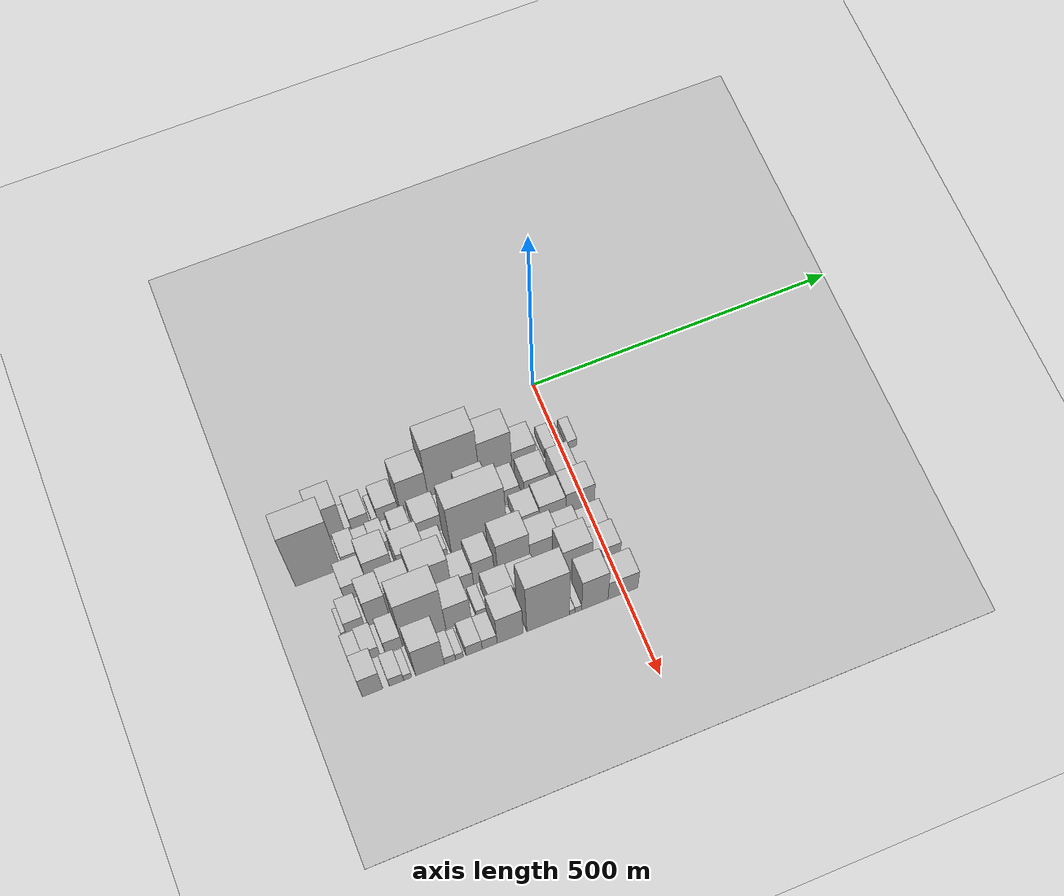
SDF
<sdf version="1.6">
 <world name="default">
  <include><name>ground_plane_1</name><uri>model://HANNAS_ground_plane</uri></include>
  <include>
   <name>ground_plane_2</name>
   <uri>model://HANNAS_ground_plane</uri>
   <pose>100 0 0  0 0 0</pose>
  </include>
  <model name="building_13">
   <static>1</static>
   <pose>100.0000 -375.0913 0 0.000000 0.000000 0.000000</pose>
   <link name="link">
    <pose>0 0 69.00 0 0 0</pose>
    <collision name="collision"><geometry><box><size>40.0000 41.8153 138.0000</size></box></geometry></collision>
    <visual name="visual">
     <cast_shadows>0</cast_shadows>
     <geometry><box><size>40.0000 41.8153 138.0000</size></box></geometry>
     <material>
      <script>
       <uri>model://HANNAS_wall/materials/scripts</uri>
       <uri>model://HANNAS_wall/materials/textures</uri>
       <name>vrc/HANNAS_wall</name>
      </script>
     </material>
    </visual>
   </link>
  </model>
  <model name="building_14">
   <static>1</static>
   <pose>100.0000 -348.9207 0 0.000000 0.000000 0.000000</pose>
   <link name="link">
    <pose>0 0 12.00 0 0 0</pose>
    <collision name="collision"><geometry><box><size>40.0000 10.5259 24.0000</size></box></geometry></collision>
    <visual name="visual">
     <cast_shadows>0</cast_shadows>
     <geometry><box><size>40.0000 10.5259 24.0000</size></box></geometry>
     <material>
      <script>
       <uri>model://HANNAS_wall/materials/scripts</uri>
       <uri>model://HANNAS_wall/materials/textures</uri>
       <name>vrc/HANNAS_wall</name>
      </script>
     </material>
    </visual>
   </link>
  </model>
  <model name="building_15">
   <static>1</static>
   <pose>100.0000 -329.2720 0 0.000000 0.000000 0.000000</pose>
   <link name="link">
    <pose>0 0 28.50 0 0 0</pose>
    <collision name="collision"><geometry><box><size>40.0000 28.7715 57.0000</size></box></geometry></collision>
    <visual name="visual">
     <cast_shadows>0</cast_shadows>
     <geometry><box><size>40.0000 28.7715 57.0000</size></box></geometry>
     <material>
      <script>
       <uri>model://HANNAS_wall/materials/scripts</uri>
       <uri>model://HANNAS_wall/materials/textures</uri>
       <name>vrc/HANNAS_wall</name>
      </script>
     </material>
    </visual>
   </link>
  </model>
  <model name="building_16">
   <static>1</static>
   <pose>100.0000 -306.3816 0 0.000000 0.000000 0.000000</pose>
   <link name="link">
    <pose>0 0 10.50 0 0 0</pose>
    <collision name="collision"><geometry><box><size>40.0000 9.0092 21.0000</size></box></geometry></collision>
    <visual name="visual">
     <cast_shadows>0</cast_shadows>
     <geometry><box><size>40.0000 9.0092 21.0000</size></box></geometry>
     <material>
      <script>
       <uri>model://HANNAS_wall/materials/scripts</uri>
       <uri>model://HANNAS_wall/materials/textures</uri>
       <name>vrc/HANNAS_wall</name>
      </script>
     </material>
    </visual>
   </link>
  </model>
  <model name="building_17">
   <static>1</static>
   <pose>100.0000 -285.0486 0 0.000000 0.000000 0.000000</pose>
   <link name="link">
    <pose>0 0 28.50 0 0 0</pose>
    <collision name="collision"><geometry><box><size>40.0000 33.6569 57.0000</size></box></geometry></collision>
    <visual name="visual">
     <cast_shadows>0</cast_shadows>
     <geometry><box><size>40.0000 33.6569 57.0000</size></box></geometry>
     <material>
      <script>
       <uri>model://HANNAS_wall/materials/scripts</uri>
       <uri>model://HANNAS_wall/materials/textures</uri>
       <name>vrc/HANNAS_wall</name>
      </script>
     </material>
    </visual>
   </link>
  </model>
  <model name="building_18">
   <static>1</static>
   <pose>100.0000 -241.9831 0 0.000000 0.000000 0.000000</pose>
   <link name="link">
    <pose>0 0 66.00 0 0 0</pose>
    <collision name="collision"><geometry><box><size>40.0000 46.4741 132.0000</size></box></geometry></collision>
    <visual name="visual">
     <cast_shadows>0</cast_shadows>
     <geometry><box><size>40.0000 46.4741 132.0000</size></box></geometry>
     <material>
      <script>
       <uri>model://HANNAS_wall/materials/scripts</uri>
       <uri>model://HANNAS_wall/materials/textures</uri>
       <name>vrc/HANNAS_wall</name>
      </script>
     </material>
    </visual>
   </link>
  </model>
  <model name="building_19">
   <static>1</static>
   <pose>100.0000 -177.3380 0 0.000000 0.000000 0.000000</pose>
   <link name="link">
    <pose>0 0 109.50 0 0 0</pose>
    <collision name="collision"><geometry><box><size>40.0000 82.8162 219.0000</size></box></geometry></collision>
    <visual name="visual">
     <cast_shadows>0</cast_shadows>
     <geometry><box><size>40.0000 82.8162 219.0000</size></box></geometry>
     <material>
      <script>
       <uri>model://HANNAS_wall/materials/scripts</uri>
       <uri>model://HANNAS_wall/materials/textures</uri>
       <name>vrc/HANNAS_wall</name>
      </script>
     </material>
    </visual>
   </link>
  </model>
  <model name="building_20">
   <static>1</static>
   <pose>100.0000 -109.4534 0 0.000000 0.000000 0.000000</pose>
   <link name="link">
    <pose>0 0 81.00 0 0 0</pose>
    <collision name="collision"><geometry><box><size>40.0000 52.9530 162.0000</size></box></geometry></collision>
    <visual name="visual">
     <cast_shadows>0</cast_shadows>
     <geometry><box><size>40.0000 52.9530 162.0000</size></box></geometry>
     <material>
      <script>
       <uri>model://HANNAS_wall/materials/scripts</uri>
       <uri>model://HANNAS_wall/materials/textures</uri>
       <name>vrc/HANNAS_wall</name>
      </script>
     </material>
    </visual>
   </link>
  </model>
  <model name="building_21">
   <static>1</static>
   <pose>100.0000 -63.3266 0 0.000000 0.000000 0.000000</pose>
   <link name="link">
    <pose>0 0 37.50 0 0 0</pose>
    <collision name="collision"><geometry><box><size>40.0000 39.3005 75.0000</size></box></geometry></collision>
    <visual name="visual">
     <cast_shadows>0</cast_shadows>
     <geometry><box><size>40.0000 39.3005 75.0000</size></box></geometry>
     <material>
      <script>
       <uri>model://HANNAS_wall/materials/scripts</uri>
       <uri>model://HANNAS_wall/materials/textures</uri>
       <name>vrc/HANNAS_wall</name>
      </script>
     </material>
    </visual>
   </link>
  </model>
  <model name="building_22">
   <static>1</static>
   <pose>100.0000 -39.4577 0 0.000000 0.000000 0.000000</pose>
   <link name="link">
    <pose>0 0 9.00 0 0 0</pose>
    <collision name="collision"><geometry><box><size>40.0000 8.4373 18.0000</size></box></geometry></collision>
    <visual name="visual">
     <cast_shadows>0</cast_shadows>
     <geometry><box><size>40.0000 8.4373 18.0000</size></box></geometry>
     <material>
      <script>
       <uri>model://HANNAS_wall/materials/scripts</uri>
       <uri>model://HANNAS_wall/materials/textures</uri>
       <name>vrc/HANNAS_wall</name>
      </script>
     </material>
    </visual>
   </link>
  </model>
  <model name="building_23">
   <static>1</static>
   <pose>100.0000 -19.8759 0 0.000000 0.000000 0.000000</pose>
   <link name="link">
    <pose>0 0 18.00 0 0 0</pose>
    <collision name="collision"><geometry><box><size>40.0000 18.7263 36.0000</size></box></geometry></collision>
    <visual name="visual">
     <cast_shadows>0</cast_shadows>
     <geometry><box><size>40.0000 18.7263 36.0000</size></box></geometry>
     <material>
      <script>
       <uri>model://HANNAS_wall/materials/scripts</uri>
       <uri>model://HANNAS_wall/materials/textures</uri>
       <name>vrc/HANNAS_wall</name>
      </script>
     </material>
    </visual>
   </link>
  </model>
  <model name="building_24">
   <static>1</static>
   <pose>100.0000 -4.0476 0 0.000000 0.000000 0.000000</pose>
   <link name="link">
    <pose>0 0 13.50 0 0 0</pose>
    <collision name="collision"><geometry><box><size>40.0000 12.9304 27.0000</size></box></geometry></collision>
    <visual name="visual">
     <cast_shadows>0</cast_shadows>
     <geometry><box><size>40.0000 12.9304 27.0000</size></box></geometry>
     <material>
      <script>
       <uri>model://HANNAS_wall/materials/scripts</uri>
       <uri>model://HANNAS_wall/materials/textures</uri>
       <name>vrc/HANNAS_wall</name>
      </script>
     </material>
    </visual>
   </link>
  </model>
  <model name="building_25">
   <static>1</static>
   <pose>100.0000 16.3489 0 0.000000 0.000000 0.000000</pose>
   <link name="link">
    <pose>0 0 15.00 0 0 0</pose>
    <collision name="collision"><geometry><box><size>40.0000 15.8626 30.0000</size></box></geometry></collision>
    <visual name="visual">
     <cast_shadows>0</cast_shadows>
     <geometry><box><size>40.0000 15.8626 30.0000</size></box></geometry>
     <material>
      <script>
       <uri>model://HANNAS_wall/materials/scripts</uri>
       <uri>model://HANNAS_wall/materials/textures</uri>
       <name>vrc/HANNAS_wall</name>
      </script>
     </material>
    </visual>
   </link>
  </model>
  <model name="building_63">
   <static>1</static>
   <pose>149.0000 -415.2956 0 0.000000 0.000000 0.000000</pose>
   <link name="link">
    <pose>0 0 111.00 0 0 0</pose>
    <collision name="collision"><geometry><box><size>40.0000 72.4643 222.0000</size></box></geometry></collision>
    <visual name="visual">
     <cast_shadows>0</cast_shadows>
     <geometry><box><size>40.0000 72.4643 222.0000</size></box></geometry>
     <material>
      <script>
       <uri>model://HANNAS_wall/materials/scripts</uri>
       <uri>model://HANNAS_wall/materials/textures</uri>
       <name>vrc/HANNAS_wall</name>
      </script>
     </material>
    </visual>
   </link>
  </model>
  <model name="building_64">
   <static>1</static>
   <pose>149.0000 -361.4305 0 0.000000 0.000000 0.000000</pose>
   <link name="link">
    <pose>0 0 25.50 0 0 0</pose>
    <collision name="collision"><geometry><box><size>40.0000 27.2659 51.0000</size></box></geometry></collision>
    <visual name="visual">
     <cast_shadows>0</cast_shadows>
     <geometry><box><size>40.0000 27.2659 51.0000</size></box></geometry>
     <material>
      <script>
       <uri>model://HANNAS_wall/materials/scripts</uri>
       <uri>model://HANNAS_wall/materials/textures</uri>
       <name>vrc/HANNAS_wall</name>
      </script>
     </material>
    </visual>
   </link>
  </model>
  <model name="building_65">
   <static>1</static>
   <pose>149.0000 -336.2556 0 0.000000 0.000000 0.000000</pose>
   <link name="link">
    <pose>0 0 19.50 0 0 0</pose>
    <collision name="collision"><geometry><box><size>40.0000 23.0838 39.0000</size></box></geometry></collision>
    <visual name="visual">
     <cast_shadows>0</cast_shadows>
     <geometry><box><size>40.0000 23.0838 39.0000</size></box></geometry>
     <material>
      <script>
       <uri>model://HANNAS_wall/materials/scripts</uri>
       <uri>model://HANNAS_wall/materials/textures</uri>
       <name>vrc/HANNAS_wall</name>
      </script>
     </material>
    </visual>
   </link>
  </model>
  <model name="building_66">
   <static>1</static>
   <pose>149.0000 -312.7713 0 0.000000 0.000000 0.000000</pose>
   <link name="link">
    <pose>0 0 22.50 0 0 0</pose>
    <collision name="collision"><geometry><box><size>40.0000 23.8847 45.0000</size></box></geometry></collision>
    <visual name="visual">
     <cast_shadows>0</cast_shadows>
     <geometry><box><size>40.0000 23.8847 45.0000</size></box></geometry>
     <material>
      <script>
       <uri>model://HANNAS_wall/materials/scripts</uri>
       <uri>model://HANNAS_wall/materials/textures</uri>
       <name>vrc/HANNAS_wall</name>
      </script>
     </material>
    </visual>
   </link>
  </model>
  <model name="building_67">
   <static>1</static>
   <pose>149.0000 -275.8887 0 0.000000 0.000000 0.000000</pose>
   <link name="link">
    <pose>0 0 28.50 0 0 0</pose>
    <collision name="collision"><geometry><box><size>40.0000 29.8805 57.0000</size></box></geometry></collision>
    <visual name="visual">
     <cast_shadows>0</cast_shadows>
     <geometry><box><size>40.0000 29.8805 57.0000</size></box></geometry>
     <material>
      <script>
       <uri>model://HANNAS_wall/materials/scripts</uri>
       <uri>model://HANNAS_wall/materials/textures</uri>
       <name>vrc/HANNAS_wall</name>
      </script>
     </material>
    </visual>
   </link>
  </model>
  <model name="building_68">
   <static>1</static>
   <pose>149.0000 -236.1031 0 0.000000 0.000000 0.000000</pose>
   <link name="link">
    <pose>0 0 36.00 0 0 0</pose>
    <collision name="collision"><geometry><box><size>40.0000 39.6908 72.0000</size></box></geometry></collision>
    <visual name="visual">
     <cast_shadows>0</cast_shadows>
     <geometry><box><size>40.0000 39.6908 72.0000</size></box></geometry>
     <material>
      <script>
       <uri>model://HANNAS_wall/materials/scripts</uri>
       <uri>model://HANNAS_wall/materials/textures</uri>
       <name>vrc/HANNAS_wall</name>
      </script>
     </material>
    </visual>
   </link>
  </model>
  <model name="building_69">
   <static>1</static>
   <pose>149.0000 -201.3836 0 0.000000 0.000000 0.000000</pose>
   <link name="link">
    <pose>0 0 25.50 0 0 0</pose>
    <collision name="collision"><geometry><box><size>40.0000 29.7481 51.0000</size></box></geometry></collision>
    <visual name="visual">
     <cast_shadows>0</cast_shadows>
     <geometry><box><size>40.0000 29.7481 51.0000</size></box></geometry>
     <material>
      <script>
       <uri>model://HANNAS_wall/materials/scripts</uri>
       <uri>model://HANNAS_wall/materials/textures</uri>
       <name>vrc/HANNAS_wall</name>
      </script>
     </material>
    </visual>
   </link>
  </model>
  <model name="building_70">
   <static>1</static>
   <pose>149.0000 -157.8084 0 0.000000 0.000000 0.000000</pose>
   <link name="link">
    <pose>0 0 58.50 0 0 0</pose>
    <collision name="collision"><geometry><box><size>40.0000 45.4023 117.0000</size></box></geometry></collision>
    <visual name="visual">
     <cast_shadows>0</cast_shadows>
     <geometry><box><size>40.0000 45.4023 117.0000</size></box></geometry>
     <material>
      <script>
       <uri>model://HANNAS_wall/materials/scripts</uri>
       <uri>model://HANNAS_wall/materials/textures</uri>
       <name>vrc/HANNAS_wall</name>
      </script>
     </material>
    </visual>
   </link>
  </model>
  <model name="building_71">
   <static>1</static>
   <pose>149.0000 -107.3944 0 0.000000 0.000000 0.000000</pose>
   <link name="link">
    <pose>0 0 33.00 0 0 0</pose>
    <collision name="collision"><geometry><box><size>40.0000 35.4257 66.0000</size></box></geometry></collision>
    <visual name="visual">
     <cast_shadows>0</cast_shadows>
     <geometry><box><size>40.0000 35.4257 66.0000</size></box></geometry>
     <material>
      <script>
       <uri>model://HANNAS_wall/materials/scripts</uri>
       <uri>model://HANNAS_wall/materials/textures</uri>
       <name>vrc/HANNAS_wall</name>
      </script>
     </material>
    </visual>
   </link>
  </model>
  <model name="building_72">
   <static>1</static>
   <pose>149.0000 -62.2759 0 0.000000 0.000000 0.000000</pose>
   <link name="link">
    <pose>0 0 36.00 0 0 0</pose>
    <collision name="collision"><geometry><box><size>40.0000 40.8113 72.0000</size></box></geometry></collision>
    <visual name="visual">
     <cast_shadows>0</cast_shadows>
     <geometry><box><size>40.0000 40.8113 72.0000</size></box></geometry>
     <material>
      <script>
       <uri>model://HANNAS_wall/materials/scripts</uri>
       <uri>model://HANNAS_wall/materials/textures</uri>
       <name>vrc/HANNAS_wall</name>
      </script>
     </material>
    </visual>
   </link>
  </model>
  <model name="building_73">
   <static>1</static>
   <pose>149.0000 -38.1605 0 0.000000 0.000000 0.000000</pose>
   <link name="link">
    <pose>0 0 7.50 0 0 0</pose>
    <collision name="collision"><geometry><box><size>40.0000 7.4195 15.0000</size></box></geometry></collision>
    <visual name="visual">
     <cast_shadows>0</cast_shadows>
     <geometry><box><size>40.0000 7.4195 15.0000</size></box></geometry>
     <material>
      <script>
       <uri>model://HANNAS_wall/materials/scripts</uri>
       <uri>model://HANNAS_wall/materials/textures</uri>
       <name>vrc/HANNAS_wall</name>
      </script>
     </material>
    </visual>
   </link>
  </model>
  <model name="building_74">
   <static>1</static>
   <pose>149.0000 -14.0762 0 0.000000 0.000000 0.000000</pose>
   <link name="link">
    <pose>0 0 31.50 0 0 0</pose>
    <collision name="collision"><geometry><box><size>40.0000 34.7492 63.0000</size></box></geometry></collision>
    <visual name="visual">
     <cast_shadows>0</cast_shadows>
     <geometry><box><size>40.0000 34.7492 63.0000</size></box></geometry>
     <material>
      <script>
       <uri>model://HANNAS_wall/materials/scripts</uri>
       <uri>model://HANNAS_wall/materials/textures</uri>
       <name>vrc/HANNAS_wall</name>
      </script>
     </material>
    </visual>
   </link>
  </model>
  <model name="building_112">
   <static>1</static>
   <pose>198.0000 -371.4315 0 0.000000 0.000000 0.000000</pose>
   <link name="link">
    <pose>0 0 33.00 0 0 0</pose>
    <collision name="collision"><geometry><box><size>40.0000 38.9641 66.0000</size></box></geometry></collision>
    <visual name="visual">
     <cast_shadows>0</cast_shadows>
     <geometry><box><size>40.0000 38.9641 66.0000</size></box></geometry>
     <material>
      <script>
       <uri>model://HANNAS_wall/materials/scripts</uri>
       <uri>model://HANNAS_wall/materials/textures</uri>
       <name>vrc/HANNAS_wall</name>
      </script>
     </material>
    </visual>
   </link>
  </model>
  <model name="building_113">
   <static>1</static>
   <pose>198.0000 -330.7115 0 0.000000 0.000000 0.000000</pose>
   <link name="link">
    <pose>0 0 67.50 0 0 0</pose>
    <collision name="collision"><geometry><box><size>40.0000 42.4760 135.0000</size></box></geometry></collision>
    <visual name="visual">
     <cast_shadows>0</cast_shadows>
     <geometry><box><size>40.0000 42.4760 135.0000</size></box></geometry>
     <material>
      <script>
       <uri>model://HANNAS_wall/materials/scripts</uri>
       <uri>model://HANNAS_wall/materials/textures</uri>
       <name>vrc/HANNAS_wall</name>
      </script>
     </material>
    </visual>
   </link>
  </model>
  <model name="building_114">
   <static>1</static>
   <pose>198.0000 -279.3711 0 0.000000 0.000000 0.000000</pose>
   <link name="link">
    <pose>0 0 57.00 0 0 0</pose>
    <collision name="collision"><geometry><box><size>40.0000 44.2047 114.0000</size></box></geometry></collision>
    <visual name="visual">
     <cast_shadows>0</cast_shadows>
     <geometry><box><size>40.0000 44.2047 114.0000</size></box></geometry>
     <material>
      <script>
       <uri>model://HANNAS_wall/materials/scripts</uri>
       <uri>model://HANNAS_wall/materials/textures</uri>
       <name>vrc/HANNAS_wall</name>
      </script>
     </material>
    </visual>
   </link>
  </model>
  <model name="building_115">
   <static>1</static>
   <pose>198.0000 -241.0895 0 0.000000 0.000000 0.000000</pose>
   <link name="link">
    <pose>0 0 30.00 0 0 0</pose>
    <collision name="collision"><geometry><box><size>40.0000 32.3585 60.0000</size></box></geometry></collision>
    <visual name="visual">
     <cast_shadows>0</cast_shadows>
     <geometry><box><size>40.0000 32.3585 60.0000</size></box></geometry>
     <material>
      <script>
       <uri>model://HANNAS_wall/materials/scripts</uri>
       <uri>model://HANNAS_wall/materials/textures</uri>
       <name>vrc/HANNAS_wall</name>
      </script>
     </material>
    </visual>
   </link>
  </model>
  <model name="building_116">
   <static>1</static>
   <pose>198.0000 -221.8473 0 0.000000 0.000000 0.000000</pose>
   <link name="link">
    <pose>0 0 7.50 0 0 0</pose>
    <collision name="collision"><geometry><box><size>40.0000 6.1260 15.0000</size></box></geometry></collision>
    <visual name="visual">
     <cast_shadows>0</cast_shadows>
     <geometry><box><size>40.0000 6.1260 15.0000</size></box></geometry>
     <material>
      <script>
       <uri>model://HANNAS_wall/materials/scripts</uri>
       <uri>model://HANNAS_wall/materials/textures</uri>
       <name>vrc/HANNAS_wall</name>
      </script>
     </material>
    </visual>
   </link>
  </model>
  <model name="building_117">
   <static>1</static>
   <pose>198.0000 -174.2746 0 0.000000 0.000000 0.000000</pose>
   <link name="link">
    <pose>0 0 112.50 0 0 0</pose>
    <collision name="collision"><geometry><box><size>40.0000 89.0194 225.0000</size></box></geometry></collision>
    <visual name="visual">
     <cast_shadows>0</cast_shadows>
     <geometry><box><size>40.0000 89.0194 225.0000</size></box></geometry>
     <material>
      <script>
       <uri>model://HANNAS_wall/materials/scripts</uri>
       <uri>model://HANNAS_wall/materials/textures</uri>
       <name>vrc/HANNAS_wall</name>
      </script>
     </material>
    </visual>
   </link>
  </model>
  <model name="building_118">
   <static>1</static>
   <pose>198.0000 -116.8831 0 0.000000 0.000000 0.000000</pose>
   <link name="link">
    <pose>0 0 10.50 0 0 0</pose>
    <collision name="collision"><geometry><box><size>40.0000 9.7635 21.0000</size></box></geometry></collision>
    <visual name="visual">
     <cast_shadows>0</cast_shadows>
     <geometry><box><size>40.0000 9.7635 21.0000</size></box></geometry>
     <material>
      <script>
       <uri>model://HANNAS_wall/materials/scripts</uri>
       <uri>model://HANNAS_wall/materials/textures</uri>
       <name>vrc/HANNAS_wall</name>
      </script>
     </material>
    </visual>
   </link>
  </model>
  <model name="building_119">
   <static>1</static>
   <pose>198.0000 -94.6599 0 0.000000 0.000000 0.000000</pose>
   <link name="link">
    <pose>0 0 34.50 0 0 0</pose>
    <collision name="collision"><geometry><box><size>40.0000 34.6830 69.0000</size></box></geometry></collision>
    <visual name="visual">
     <cast_shadows>0</cast_shadows>
     <geometry><box><size>40.0000 34.6830 69.0000</size></box></geometry>
     <material>
      <script>
       <uri>model://HANNAS_wall/materials/scripts</uri>
       <uri>model://HANNAS_wall/materials/textures</uri>
       <name>vrc/HANNAS_wall</name>
      </script>
     </material>
    </visual>
   </link>
  </model>
  <model name="building_120">
   <static>1</static>
   <pose>198.0000 -56.0234 0 0.000000 0.000000 0.000000</pose>
   <link name="link">
    <pose>0 0 40.50 0 0 0</pose>
    <collision name="collision"><geometry><box><size>40.0000 42.5899 81.0000</size></box></geometry></collision>
    <visual name="visual">
     <cast_shadows>0</cast_shadows>
     <geometry><box><size>40.0000 42.5899 81.0000</size></box></geometry>
     <material>
      <script>
       <uri>model://HANNAS_wall/materials/scripts</uri>
       <uri>model://HANNAS_wall/materials/textures</uri>
       <name>vrc/HANNAS_wall</name>
      </script>
     </material>
    </visual>
   </link>
  </model>
  <model name="building_121">
   <static>1</static>
   <pose>198.0000 -11.2413 0 0.000000 0.000000 0.000000</pose>
   <link name="link">
    <pose>0 0 45.00 0 0 0</pose>
    <collision name="collision"><geometry><box><size>40.0000 46.9743 90.0000</size></box></geometry></collision>
    <visual name="visual">
     <cast_shadows>0</cast_shadows>
     <geometry><box><size>40.0000 46.9743 90.0000</size></box></geometry>
     <material>
      <script>
       <uri>model://HANNAS_wall/materials/scripts</uri>
       <uri>model://HANNAS_wall/materials/textures</uri>
       <name>vrc/HANNAS_wall</name>
      </script>
     </material>
    </visual>
   </link>
  </model>
  <model name="building_157">
   <static>1</static>
   <pose>247.0000 -410.4297 0 0.000000 0.000000 0.000000</pose>
   <link name="link">
    <pose>0 0 7.50 0 0 0</pose>
    <collision name="collision"><geometry><box><size>40.0000 7.4075 15.0000</size></box></geometry></collision>
    <visual name="visual">
     <cast_shadows>0</cast_shadows>
     <geometry><box><size>40.0000 7.4075 15.0000</size></box></geometry>
     <material>
      <script>
       <uri>model://HANNAS_wall/materials/scripts</uri>
       <uri>model://HANNAS_wall/materials/textures</uri>
       <name>vrc/HANNAS_wall</name>
      </script>
     </material>
    </visual>
   </link>
  </model>
  <model name="building_158">
   <static>1</static>
   <pose>247.0000 -391.8639 0 0.000000 0.000000 0.000000</pose>
   <link name="link">
    <pose>0 0 27.00 0 0 0</pose>
    <collision name="collision"><geometry><box><size>40.0000 29.7241 54.0000</size></box></geometry></collision>
    <visual name="visual">
     <cast_shadows>0</cast_shadows>
     <geometry><box><size>40.0000 29.7241 54.0000</size></box></geometry>
     <material>
      <script>
       <uri>model://HANNAS_wall/materials/scripts</uri>
       <uri>model://HANNAS_wall/materials/textures</uri>
       <name>vrc/HANNAS_wall</name>
      </script>
     </material>
    </visual>
   </link>
  </model>
  <model name="building_159">
   <static>1</static>
   <pose>247.0000 -354.8948 0 0.000000 0.000000 0.000000</pose>
   <link name="link">
    <pose>0 0 57.00 0 0 0</pose>
    <collision name="collision"><geometry><box><size>40.0000 34.2141 114.0000</size></box></geometry></collision>
    <visual name="visual">
     <cast_shadows>0</cast_shadows>
     <geometry><box><size>40.0000 34.2141 114.0000</size></box></geometry>
     <material>
      <script>
       <uri>model://HANNAS_wall/materials/scripts</uri>
       <uri>model://HANNAS_wall/materials/textures</uri>
       <name>vrc/HANNAS_wall</name>
      </script>
     </material>
    </visual>
   </link>
  </model>
  <model name="building_160">
   <static>1</static>
   <pose>247.0000 -315.6419 0 0.000000 0.000000 0.000000</pose>
   <link name="link">
    <pose>0 0 61.50 0 0 0</pose>
    <collision name="collision"><geometry><box><size>40.0000 44.2917 123.0000</size></box></geometry></collision>
    <visual name="visual">
     <cast_shadows>0</cast_shadows>
     <geometry><box><size>40.0000 44.2917 123.0000</size></box></geometry>
     <material>
      <script>
       <uri>model://HANNAS_wall/materials/scripts</uri>
       <uri>model://HANNAS_wall/materials/textures</uri>
       <name>vrc/HANNAS_wall</name>
      </script>
     </material>
    </visual>
   </link>
  </model>
  <model name="building_161">
   <static>1</static>
   <pose>247.0000 -265.5947 0 0.000000 0.000000 0.000000</pose>
   <link name="link">
    <pose>0 0 82.50 0 0 0</pose>
    <collision name="collision"><geometry><box><size>40.0000 55.8027 165.0000</size></box></geometry></collision>
    <visual name="visual">
     <cast_shadows>0</cast_shadows>
     <geometry><box><size>40.0000 55.8027 165.0000</size></box></geometry>
     <material>
      <script>
       <uri>model://HANNAS_wall/materials/scripts</uri>
       <uri>model://HANNAS_wall/materials/textures</uri>
       <name>vrc/HANNAS_wall</name>
      </script>
     </material>
    </visual>
   </link>
  </model>
  <model name="building_162">
   <static>1</static>
   <pose>247.0000 -220.7779 0 0.000000 0.000000 0.000000</pose>
   <link name="link">
    <pose>0 0 30.00 0 0 0</pose>
    <collision name="collision"><geometry><box><size>40.0000 33.8310 60.0000</size></box></geometry></collision>
    <visual name="visual">
     <cast_shadows>0</cast_shadows>
     <geometry><box><size>40.0000 33.8310 60.0000</size></box></geometry>
     <material>
      <script>
       <uri>model://HANNAS_wall/materials/scripts</uri>
       <uri>model://HANNAS_wall/materials/textures</uri>
       <name>vrc/HANNAS_wall</name>
      </script>
     </material>
    </visual>
   </link>
  </model>
  <model name="building_163">
   <static>1</static>
   <pose>247.0000 -186.8509 0 0.000000 0.000000 0.000000</pose>
   <link name="link">
    <pose>0 0 51.00 0 0 0</pose>
    <collision name="collision"><geometry><box><size>40.0000 34.0231 102.0000</size></box></geometry></collision>
    <visual name="visual">
     <cast_shadows>0</cast_shadows>
     <geometry><box><size>40.0000 34.0231 102.0000</size></box></geometry>
     <material>
      <script>
       <uri>model://HANNAS_wall/materials/scripts</uri>
       <uri>model://HANNAS_wall/materials/textures</uri>
       <name>vrc/HANNAS_wall</name>
      </script>
     </material>
    </visual>
   </link>
  </model>
  <model name="building_164">
   <static>1</static>
   <pose>247.0000 -139.0201 0 0.000000 0.000000 0.000000</pose>
   <link name="link">
    <pose>0 0 67.50 0 0 0</pose>
    <collision name="collision"><geometry><box><size>40.0000 51.6385 135.0000</size></box></geometry></collision>
    <visual name="visual">
     <cast_shadows>0</cast_shadows>
     <geometry><box><size>40.0000 51.6385 135.0000</size></box></geometry>
     <material>
      <script>
       <uri>model://HANNAS_wall/materials/scripts</uri>
       <uri>model://HANNAS_wall/materials/textures</uri>
       <name>vrc/HANNAS_wall</name>
      </script>
     </material>
    </visual>
   </link>
  </model>
  <model name="building_165">
   <static>1</static>
   <pose>247.0000 -89.4596 0 0.000000 0.000000 0.000000</pose>
   <link name="link">
    <pose>0 0 42.00 0 0 0</pose>
    <collision name="collision"><geometry><box><size>40.0000 47.4825 84.0000</size></box></geometry></collision>
    <visual name="visual">
     <cast_shadows>0</cast_shadows>
     <geometry><box><size>40.0000 47.4825 84.0000</size></box></geometry>
     <material>
      <script>
       <uri>model://HANNAS_wall/materials/scripts</uri>
       <uri>model://HANNAS_wall/materials/textures</uri>
       <name>vrc/HANNAS_wall</name>
      </script>
     </material>
    </visual>
   </link>
  </model>
  <model name="building_166">
   <static>1</static>
   <pose>247.0000 -47.2180 0 0.000000 0.000000 0.000000</pose>
   <link name="link">
    <pose>0 0 33.00 0 0 0</pose>
    <collision name="collision"><geometry><box><size>40.0000 37.0007 66.0000</size></box></geometry></collision>
    <visual name="visual">
     <cast_shadows>0</cast_shadows>
     <geometry><box><size>40.0000 37.0007 66.0000</size></box></geometry>
     <material>
      <script>
       <uri>model://HANNAS_wall/materials/scripts</uri>
       <uri>model://HANNAS_wall/materials/textures</uri>
       <name>vrc/HANNAS_wall</name>
      </script>
     </material>
    </visual>
   </link>
  </model>
  <model name="building_167">
   <static>1</static>
   <pose>247.0000 -19.2278 0 0.000000 0.000000 0.000000</pose>
   <link name="link">
    <pose>0 0 18.00 0 0 0</pose>
    <collision name="collision"><geometry><box><size>40.0000 18.9798 36.0000</size></box></geometry></collision>
    <visual name="visual">
     <cast_shadows>0</cast_shadows>
     <geometry><box><size>40.0000 18.9798 36.0000</size></box></geometry>
     <material>
      <script>
       <uri>model://HANNAS_wall/materials/scripts</uri>
       <uri>model://HANNAS_wall/materials/textures</uri>
       <name>vrc/HANNAS_wall</name>
      </script>
     </material>
    </visual>
   </link>
  </model>
  <model name="building_168">
   <static>1</static>
   <pose>247.0000 2.7058 0 0.000000 0.000000 0.000000</pose>
   <link name="link">
    <pose>0 0 24.00 0 0 0</pose>
    <collision name="collision"><geometry><box><size>40.0000 24.8875 48.0000</size></box></geometry></collision>
    <visual name="visual">
     <cast_shadows>0</cast_shadows>
     <geometry><box><size>40.0000 24.8875 48.0000</size></box></geometry>
     <material>
      <script>
       <uri>model://HANNAS_wall/materials/scripts</uri>
       <uri>model://HANNAS_wall/materials/textures</uri>
       <name>vrc/HANNAS_wall</name>
      </script>
     </material>
    </visual>
   </link>
  </model>
  <model name="building_205">
   <static>1</static>
   <pose>296.0000 -407.0974 0 0.000000 0.000000 0.000000</pose>
   <link name="link">
    <pose>0 0 19.50 0 0 0</pose>
    <collision name="collision"><geometry><box><size>40.0000 21.9353 39.0000</size></box></geometry></collision>
    <visual name="visual">
     <cast_shadows>0</cast_shadows>
     <geometry><box><size>40.0000 21.9353 39.0000</size></box></geometry>
     <material>
      <script>
       <uri>model://HANNAS_wall/materials/scripts</uri>
       <uri>model://HANNAS_wall/materials/textures</uri>
       <name>vrc/HANNAS_wall</name>
      </script>
     </material>
    </visual>
   </link>
  </model>
  <model name="building_206">
   <static>1</static>
   <pose>296.0000 -383.7318 0 0.000000 0.000000 0.000000</pose>
   <link name="link">
    <pose>0 0 24.00 0 0 0</pose>
    <collision name="collision"><geometry><box><size>40.0000 24.7958 48.0000</size></box></geometry></collision>
    <visual name="visual">
     <cast_shadows>0</cast_shadows>
     <geometry><box><size>40.0000 24.7958 48.0000</size></box></geometry>
     <material>
      <script>
       <uri>model://HANNAS_wall/materials/scripts</uri>
       <uri>model://HANNAS_wall/materials/textures</uri>
       <name>vrc/HANNAS_wall</name>
      </script>
     </material>
    </visual>
   </link>
  </model>
  <model name="building_207">
   <static>1</static>
   <pose>296.0000 -349.4941 0 0.000000 0.000000 0.000000</pose>
   <link name="link">
    <pose>0 0 27.00 0 0 0</pose>
    <collision name="collision"><geometry><box><size>40.0000 27.6797 54.0000</size></box></geometry></collision>
    <visual name="visual">
     <cast_shadows>0</cast_shadows>
     <geometry><box><size>40.0000 27.6797 54.0000</size></box></geometry>
     <material>
      <script>
       <uri>model://HANNAS_wall/materials/scripts</uri>
       <uri>model://HANNAS_wall/materials/textures</uri>
       <name>vrc/HANNAS_wall</name>
      </script>
     </material>
    </visual>
   </link>
  </model>
  <model name="building_208">
   <static>1</static>
   <pose>296.0000 -301.3528 0 0.000000 0.000000 0.000000</pose>
   <link name="link">
    <pose>0 0 102.00 0 0 0</pose>
    <collision name="collision"><geometry><box><size>40.0000 68.6029 204.0000</size></box></geometry></collision>
    <visual name="visual">
     <cast_shadows>0</cast_shadows>
     <geometry><box><size>40.0000 68.6029 204.0000</size></box></geometry>
     <material>
      <script>
       <uri>model://HANNAS_wall/materials/scripts</uri>
       <uri>model://HANNAS_wall/materials/textures</uri>
       <name>vrc/HANNAS_wall</name>
      </script>
     </material>
    </visual>
   </link>
  </model>
  <model name="building_209">
   <static>1</static>
   <pose>296.0000 -246.8214 0 0.000000 0.000000 0.000000</pose>
   <link name="link">
    <pose>0 0 52.50 0 0 0</pose>
    <collision name="collision"><geometry><box><size>40.0000 40.4598 105.0000</size></box></geometry></collision>
    <visual name="visual">
     <cast_shadows>0</cast_shadows>
     <geometry><box><size>40.0000 40.4598 105.0000</size></box></geometry>
     <material>
      <script>
       <uri>model://HANNAS_wall/materials/scripts</uri>
       <uri>model://HANNAS_wall/materials/textures</uri>
       <name>vrc/HANNAS_wall</name>
      </script>
     </material>
    </visual>
   </link>
  </model>
  <model name="building_210">
   <static>1</static>
   <pose>296.0000 -210.5169 0 0.000000 0.000000 0.000000</pose>
   <link name="link">
    <pose>0 0 15.00 0 0 0</pose>
    <collision name="collision"><geometry><box><size>40.0000 16.1492 30.0000</size></box></geometry></collision>
    <visual name="visual">
     <cast_shadows>0</cast_shadows>
     <geometry><box><size>40.0000 16.1492 30.0000</size></box></geometry>
     <material>
      <script>
       <uri>model://HANNAS_wall/materials/scripts</uri>
       <uri>model://HANNAS_wall/materials/textures</uri>
       <name>vrc/HANNAS_wall</name>
      </script>
     </material>
    </visual>
   </link>
  </model>
  <model name="building_211">
   <static>1</static>
   <pose>296.0000 -176.3561 0 0.000000 0.000000 0.000000</pose>
   <link name="link">
    <pose>0 0 37.50 0 0 0</pose>
    <collision name="collision"><geometry><box><size>40.0000 40.1725 75.0000</size></box></geometry></collision>
    <visual name="visual">
     <cast_shadows>0</cast_shadows>
     <geometry><box><size>40.0000 40.1725 75.0000</size></box></geometry>
     <material>
      <script>
       <uri>model://HANNAS_wall/materials/scripts</uri>
       <uri>model://HANNAS_wall/materials/textures</uri>
       <name>vrc/HANNAS_wall</name>
      </script>
     </material>
    </visual>
   </link>
  </model>
  <model name="building_212">
   <static>1</static>
   <pose>296.0000 -135.5810 0 0.000000 0.000000 0.000000</pose>
   <link name="link">
    <pose>0 0 36.00 0 0 0</pose>
    <collision name="collision"><geometry><box><size>40.0000 41.3775 72.0000</size></box></geometry></collision>
    <visual name="visual">
     <cast_shadows>0</cast_shadows>
     <geometry><box><size>40.0000 41.3775 72.0000</size></box></geometry>
     <material>
      <script>
       <uri>model://HANNAS_wall/materials/scripts</uri>
       <uri>model://HANNAS_wall/materials/textures</uri>
       <name>vrc/HANNAS_wall</name>
      </script>
     </material>
    </visual>
   </link>
  </model>
  <model name="building_213">
   <static>1</static>
   <pose>296.0000 -102.4701 0 0.000000 0.000000 0.000000</pose>
   <link name="link">
    <pose>0 0 21.00 0 0 0</pose>
    <collision name="collision"><geometry><box><size>40.0000 24.8443 42.0000</size></box></geometry></collision>
    <visual name="visual">
     <cast_shadows>0</cast_shadows>
     <geometry><box><size>40.0000 24.8443 42.0000</size></box></geometry>
     <material>
      <script>
       <uri>model://HANNAS_wall/materials/scripts</uri>
       <uri>model://HANNAS_wall/materials/textures</uri>
       <name>vrc/HANNAS_wall</name>
      </script>
     </material>
    </visual>
   </link>
  </model>
  <model name="building_214">
   <static>1</static>
   <pose>296.0000 -56.5629 0 0.000000 0.000000 0.000000</pose>
   <link name="link">
    <pose>0 0 73.50 0 0 0</pose>
    <collision name="collision"><geometry><box><size>40.0000 46.9701 147.0000</size></box></geometry></collision>
    <visual name="visual">
     <cast_shadows>0</cast_shadows>
     <geometry><box><size>40.0000 46.9701 147.0000</size></box></geometry>
     <material>
      <script>
       <uri>model://HANNAS_wall/materials/scripts</uri>
       <uri>model://HANNAS_wall/materials/textures</uri>
       <name>vrc/HANNAS_wall</name>
      </script>
     </material>
    </visual>
   </link>
  </model>
  <model name="building_215">
   <static>1</static>
   <pose>296.0000 -10.2261 0 0.000000 0.000000 0.000000</pose>
   <link name="link">
    <pose>0 0 45.00 0 0 0</pose>
    <collision name="collision"><geometry><box><size>40.0000 45.7035 90.0000</size></box></geometry></collision>
    <visual name="visual">
     <cast_shadows>0</cast_shadows>
     <geometry><box><size>40.0000 45.7035 90.0000</size></box></geometry>
     <material>
      <script>
       <uri>model://HANNAS_wall/materials/scripts</uri>
       <uri>model://HANNAS_wall/materials/textures</uri>
       <name>vrc/HANNAS_wall</name>
      </script>
     </material>
    </visual>
   </link>
  </model>
  <model name="building_253">
   <static>1</static>
   <pose>345.0000 -401.0809 0 0.000000 0.000000 0.000000</pose>
   <link name="link">
    <pose>0 0 46.50 0 0 0</pose>
    <collision name="collision"><geometry><box><size>40.0000 32.1046 93.0000</size></box></geometry></collision>
    <visual name="visual">
     <cast_shadows>0</cast_shadows>
     <geometry><box><size>40.0000 32.1046 93.0000</size></box></geometry>
     <material>
      <script>
       <uri>model://HANNAS_wall/materials/scripts</uri>
       <uri>model://HANNAS_wall/materials/textures</uri>
       <name>vrc/HANNAS_wall</name>
      </script>
     </material>
    </visual>
   </link>
  </model>
  <model name="building_254">
   <static>1</static>
   <pose>345.0000 -363.7208 0 0.000000 0.000000 0.000000</pose>
   <link name="link">
    <pose>0 0 19.50 0 0 0</pose>
    <collision name="collision"><geometry><box><size>40.0000 22.6156 39.0000</size></box></geometry></collision>
    <visual name="visual">
     <cast_shadows>0</cast_shadows>
     <geometry><box><size>40.0000 22.6156 39.0000</size></box></geometry>
     <material>
      <script>
       <uri>model://HANNAS_wall/materials/scripts</uri>
       <uri>model://HANNAS_wall/materials/textures</uri>
       <name>vrc/HANNAS_wall</name>
      </script>
     </material>
    </visual>
   </link>
  </model>
  <model name="building_255">
   <static>1</static>
   <pose>345.0000 -346.0888 0 0.000000 0.000000 0.000000</pose>
   <link name="link">
    <pose>0 0 13.50 0 0 0</pose>
    <collision name="collision"><geometry><box><size>40.0000 12.6484 27.0000</size></box></geometry></collision>
    <visual name="visual">
     <cast_shadows>0</cast_shadows>
     <geometry><box><size>40.0000 12.6484 27.0000</size></box></geometry>
     <material>
      <script>
       <uri>model://HANNAS_wall/materials/scripts</uri>
       <uri>model://HANNAS_wall/materials/textures</uri>
       <name>vrc/HANNAS_wall</name>
      </script>
     </material>
    </visual>
   </link>
  </model>
  <model name="building_256">
   <static>1</static>
   <pose>345.0000 -311.0837 0 0.000000 0.000000 0.000000</pose>
   <link name="link">
    <pose>0 0 66.00 0 0 0</pose>
    <collision name="collision"><geometry><box><size>40.0000 45.3616 132.0000</size></box></geometry></collision>
    <visual name="visual">
     <cast_shadows>0</cast_shadows>
     <geometry><box><size>40.0000 45.3616 132.0000</size></box></geometry>
     <material>
      <script>
       <uri>model://HANNAS_wall/materials/scripts</uri>
       <uri>model://HANNAS_wall/materials/textures</uri>
       <name>vrc/HANNAS_wall</name>
      </script>
     </material>
    </visual>
   </link>
  </model>
  <model name="building_257">
   <static>1</static>
   <pose>345.0000 -279.5911 0 0.000000 0.000000 0.000000</pose>
   <link name="link">
    <pose>0 0 16.50 0 0 0</pose>
    <collision name="collision"><geometry><box><size>40.0000 17.6237 33.0000</size></box></geometry></collision>
    <visual name="visual">
     <cast_shadows>0</cast_shadows>
     <geometry><box><size>40.0000 17.6237 33.0000</size></box></geometry>
     <material>
      <script>
       <uri>model://HANNAS_wall/materials/scripts</uri>
       <uri>model://HANNAS_wall/materials/textures</uri>
       <name>vrc/HANNAS_wall</name>
      </script>
     </material>
    </visual>
   </link>
  </model>
  <model name="building_258">
   <static>1</static>
   <pose>345.0000 -264.5237 0 0.000000 0.000000 0.000000</pose>
   <link name="link">
    <pose>0 0 13.50 0 0 0</pose>
    <collision name="collision"><geometry><box><size>40.0000 12.5110 27.0000</size></box></geometry></collision>
    <visual name="visual">
     <cast_shadows>0</cast_shadows>
     <geometry><box><size>40.0000 12.5110 27.0000</size></box></geometry>
     <material>
      <script>
       <uri>model://HANNAS_wall/materials/scripts</uri>
       <uri>model://HANNAS_wall/materials/textures</uri>
       <name>vrc/HANNAS_wall</name>
      </script>
     </material>
    </visual>
   </link>
  </model>
  <model name="building_259">
   <static>1</static>
   <pose>345.0000 -241.4480 0 0.000000 0.000000 0.000000</pose>
   <link name="link">
    <pose>0 0 24.00 0 0 0</pose>
    <collision name="collision"><geometry><box><size>40.0000 25.6403 48.0000</size></box></geometry></collision>
    <visual name="visual">
     <cast_shadows>0</cast_shadows>
     <geometry><box><size>40.0000 25.6403 48.0000</size></box></geometry>
     <material>
      <script>
       <uri>model://HANNAS_wall/materials/scripts</uri>
       <uri>model://HANNAS_wall/materials/textures</uri>
       <name>vrc/HANNAS_wall</name>
      </script>
     </material>
    </visual>
   </link>
  </model>
  <model name="building_260">
   <static>1</static>
   <pose>345.0000 -216.8034 0 0.000000 0.000000 0.000000</pose>
   <link name="link">
    <pose>0 0 22.50 0 0 0</pose>
    <collision name="collision"><geometry><box><size>40.0000 23.6490 45.0000</size></box></geometry></collision>
    <visual name="visual">
     <cast_shadows>0</cast_shadows>
     <geometry><box><size>40.0000 23.6490 45.0000</size></box></geometry>
     <material>
      <script>
       <uri>model://HANNAS_wall/materials/scripts</uri>
       <uri>model://HANNAS_wall/materials/textures</uri>
       <name>vrc/HANNAS_wall</name>
      </script>
     </material>
    </visual>
   </link>
  </model>
  <model name="building_261">
   <static>1</static>
   <pose>345.0000 -184.2324 0 0.000000 0.000000 0.000000</pose>
   <link name="link">
    <pose>0 0 61.50 0 0 0</pose>
    <collision name="collision"><geometry><box><size>40.0000 41.4931 123.0000</size></box></geometry></collision>
    <visual name="visual">
     <cast_shadows>0</cast_shadows>
     <geometry><box><size>40.0000 41.4931 123.0000</size></box></geometry>
     <material>
      <script>
       <uri>model://HANNAS_wall/materials/scripts</uri>
       <uri>model://HANNAS_wall/materials/textures</uri>
       <name>vrc/HANNAS_wall</name>
      </script>
     </material>
    </visual>
   </link>
  </model>
  <model name="building_262">
   <static>1</static>
   <pose>345.0000 -123.3906 0 0.000000 0.000000 0.000000</pose>
   <link name="link">
    <pose>0 0 108.00 0 0 0</pose>
    <collision name="collision"><geometry><box><size>40.0000 68.1905 216.0000</size></box></geometry></collision>
    <visual name="visual">
     <cast_shadows>0</cast_shadows>
     <geometry><box><size>40.0000 68.1905 216.0000</size></box></geometry>
     <material>
      <script>
       <uri>model://HANNAS_wall/materials/scripts</uri>
       <uri>model://HANNAS_wall/materials/textures</uri>
       <name>vrc/HANNAS_wall</name>
      </script>
     </material>
    </visual>
   </link>
  </model>
  <model name="building_263">
   <static>1</static>
   <pose>345.0000 -84.8855 0 0.000000 0.000000 0.000000</pose>
   <link name="link">
    <pose>0 0 10.50 0 0 0</pose>
    <collision name="collision"><geometry><box><size>40.0000 8.8198 21.0000</size></box></geometry></collision>
    <visual name="visual">
     <cast_shadows>0</cast_shadows>
     <geometry><box><size>40.0000 8.8198 21.0000</size></box></geometry>
     <material>
      <script>
       <uri>model://HANNAS_wall/materials/scripts</uri>
       <uri>model://HANNAS_wall/materials/textures</uri>
       <name>vrc/HANNAS_wall</name>
      </script>
     </material>
    </visual>
   </link>
  </model>
  <model name="building_264">
   <static>1</static>
   <pose>345.0000 -75.0549 0 0.000000 0.000000 0.000000</pose>
   <link name="link">
    <pose>0 0 12.00 0 0 0</pose>
    <collision name="collision"><geometry><box><size>40.0000 10.8413 24.0000</size></box></geometry></collision>
    <visual name="visual">
     <cast_shadows>0</cast_shadows>
     <geometry><box><size>40.0000 10.8413 24.0000</size></box></geometry>
     <material>
      <script>
       <uri>model://HANNAS_wall/materials/scripts</uri>
       <uri>model://HANNAS_wall/materials/textures</uri>
       <name>vrc/HANNAS_wall</name>
      </script>
     </material>
    </visual>
   </link>
  </model>
  <model name="building_265">
   <static>1</static>
   <pose>345.0000 -48.3974 0 0.000000 0.000000 0.000000</pose>
   <link name="link">
    <pose>0 0 67.50 0 0 0</pose>
    <collision name="collision"><geometry><box><size>40.0000 42.4737 135.0000</size></box></geometry></collision>
    <visual name="visual">
     <cast_shadows>0</cast_shadows>
     <geometry><box><size>40.0000 42.4737 135.0000</size></box></geometry>
     <material>
      <script>
       <uri>model://HANNAS_wall/materials/scripts</uri>
       <uri>model://HANNAS_wall/materials/textures</uri>
       <name>vrc/HANNAS_wall</name>
      </script>
     </material>
    </visual>
   </link>
  </model>
  <model name="building_266">
   <static>1</static>
   <pose>345.0000 -2.9768 0 0.000000 0.000000 0.000000</pose>
   <link name="link">
    <pose>0 0 40.50 0 0 0</pose>
    <collision name="collision"><geometry><box><size>40.0000 48.3674 81.0000</size></box></geometry></collision>
    <visual name="visual">
     <cast_shadows>0</cast_shadows>
     <geometry><box><size>40.0000 48.3674 81.0000</size></box></geometry>
     <material>
      <script>
       <uri>model://HANNAS_wall/materials/scripts</uri>
       <uri>model://HANNAS_wall/materials/textures</uri>
       <name>vrc/HANNAS_wall</name>
      </script>
     </material>
    </visual>
   </link>
  </model>
 </world>
</sdf>
